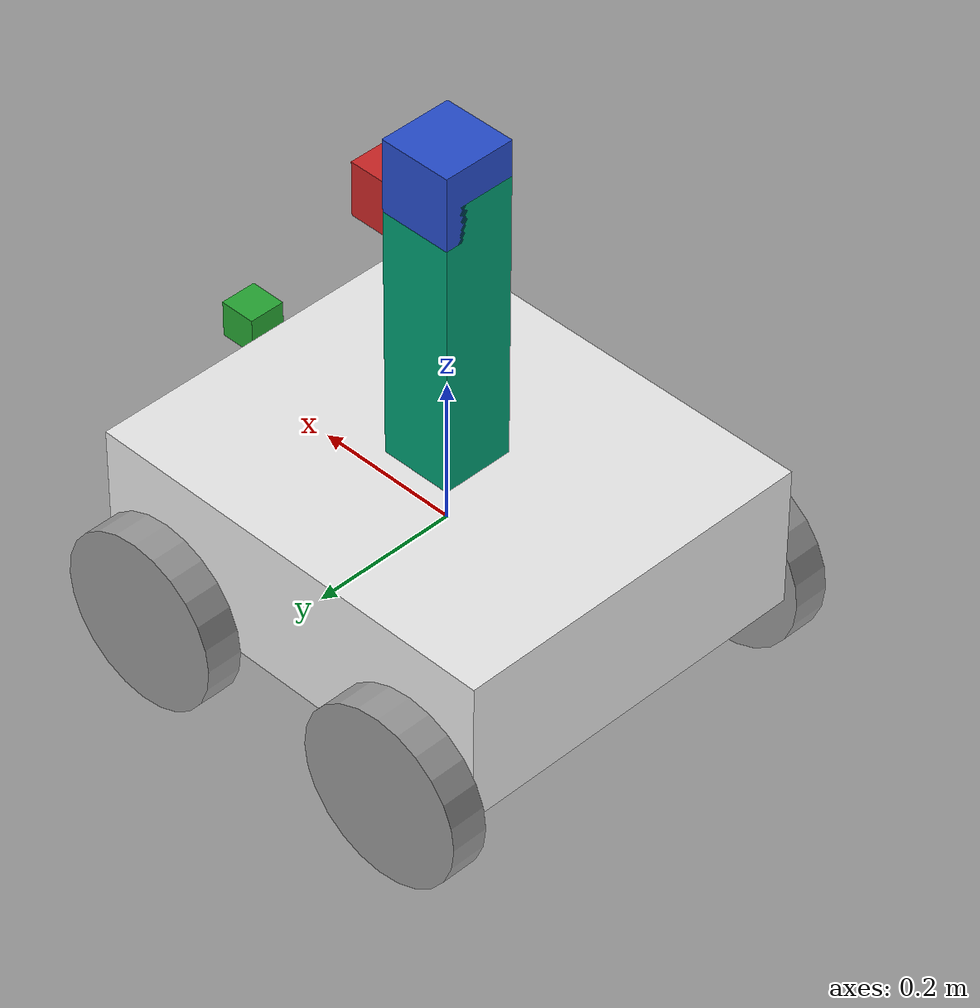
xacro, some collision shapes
<?xml version='1.0'?>

<robot name="robot" xmlns:xacro="http://www.ros.org/wiki/xacro">

  <xacro:include filename="$(find robot)/urdf/robot.gazebo" />

  <!-- COLOR REFERENCE -->

  <gazebo reference="fl_wheel">
    <material>Gazebo/Grey</material>
  </gazebo>

  <gazebo reference="fr_wheel">
    <material>Gazebo/Grey</material>
  </gazebo>

  <gazebo reference="bl_wheel">
    <material>Gazebo/Grey</material>
  </gazebo>

  <gazebo reference="br_wheel">
    <material>Gazebo/Grey</material>
  </gazebo>

  <gazebo reference="camera">
    <material>Gazebo/Green</material>
  </gazebo>

  <gazebo reference="gps_link">
    <material>Gazebo/Grey</material>
  </gazebo>

  <gazebo reference="imu_link">
    <material>Gazebo/Grey</material>
  </gazebo>

  <gazebo reference="chassis">
    <material>Gazebo/White</material>
  </gazebo>

  <gazebo reference="kinect_link">
    <material>Gazebo/Red</material>
  </gazebo>

  <gazebo reference="hokuyo">
    <material>Gazebo/Blue</material>
  </gazebo>

  <!-- LINKS -->

  <!-- ROBOT FOOTPRINT -->

  <link name="robot_footprint"></link>

  <joint name="robot_footprint_joint" type="fixed">
    <origin xyz="0 0 0" rpy="0 0 0" />
    <parent link="robot_footprint"/>
    <child link="chassis" />
  </joint>

  <!-- CHASSIS -->

  <link name='chassis'>

    <inertial>
      <mass value="10"/>
      <origin xyz="0.0 0 0" rpy=" 0 0 0"/>
      <inertia
          ixx="0.375" ixy="0" ixz="0"
          iyy="1.275" iyz="0"
          izz="1.5"
      />
    </inertial>

    <collision>
      <origin xyz="0 0 0" rpy=" 0 0 0"/>
      <geometry>
        <box size="0.6 0.51 0.2"/>
      </geometry>
    </collision>

    <visual>
      <origin xyz="0 0 0" rpy=" 0 0 0"/>
      <geometry>
       <box size="0.6 0.51 0.2"/>
      </geometry>
    </visual>

  </link>

  <!-- SUPPORT -->
  <link name='support'>

    <inertial>
      <mass value="1.0"/>
      <origin xyz="0.0 0 0" rpy=" 0 0 0"/>
      <inertia
          ixx="0.1" ixy="0" ixz="0"
          iyy="0.1" iyz="0"
          izz="0.1"
      />
    </inertial>

    <collision>
      <origin xyz="0 0 0" rpy=" 0 0 0"/>
      <geometry>
        <box size="0.1 0.1 0.4"/>
      </geometry>
    </collision>

    <visual>
      <origin xyz="0 0 0" rpy=" 0 0 0"/>
      <geometry>
       <box size="0.1 0.1 0.4"/>
      </geometry>
    </visual>

  </link>

  <!-- WHEELS -->

  <!-- FRONT RIGHT -->

  <link name="fr_wheel">
    <inertial>
      <mass value="1"/>
      <origin xyz="0 0 0" rpy="0 1.5707 1.5707"/>
      <inertia
        ixx="0.01583333333" ixy="0" ixz="0"
        iyy="0.0015625" iyz="0.0"
        izz="0.01583333333"
      />
    </inertial>

    <collision>
      <origin xyz="0 0 0" rpy="0 1.5707 1.5707"/>
      <geometry>
        <cylinder radius="0.12" length="0.05"/>
      </geometry>
    </collision>

    <visual>
      <origin xyz="0 0 0" rpy="0 1.5707 1.5707"/>
      <geometry>
        <cylinder radius="0.12" length="0.05"/>
      </geometry>
    </visual>

  </link>

  <!-- FRONT LEFT -->

  <link name="fl_wheel">
    <inertial>
      <mass value="1"/>
      <origin xyz="0 0 0" rpy="0 1.5707 1.5707"/>
      <inertia
        ixx="0.01583333333" ixy="0.0" ixz="0.0"
        iyy="0.0015625" iyz="0.0"
        izz="0.01583333333"
      />
    </inertial>

    <collision>
      <origin xyz="0 0 0" rpy="0 1.5707 1.5707"/>
      <geometry>
        <cylinder radius="0.12" length="0.05"/>
      </geometry>
    </collision>

    <visual>
      <origin xyz="0 0 0" rpy="0 1.5707 1.5707"/>
      <geometry>
        <cylinder radius="0.12" length="0.05"/>
      </geometry>
    </visual>

  </link>

  <!-- BACK RIGHT -->

  <link name="br_wheel">
    <inertial>
      <mass value="1"/>
      <origin xyz="0 0 0" rpy="0 1.5707 1.5707"/>
      <inertia
        ixx="0.01583333333" ixy="0.0" ixz="0.0"
        iyy="0.0015625" iyz="0.0"
        izz="0.01583333333"
      />
    </inertial>

    <collision>
      <origin xyz="0 0 0" rpy="0 1.5707 1.5707"/>
      <geometry>
        <cylinder radius="0.12" length="0.05"/>
      </geometry>
    </collision>

    <visual>
      <origin xyz="0 0 0" rpy="0 1.5707 1.5707"/>
      <geometry>
        <cylinder radius="0.12" length="0.05"/>
      </geometry>
    </visual>

  </link>

  <!-- BACK LEFT -->

  <link name="bl_wheel">
    <inertial>
      <mass value="1"/>
      <origin xyz="0 0 0" rpy="0 1.5707 1.5707"/>
      <inertia
        ixx="0.01583333333" ixy="0.0" ixz="0.0"
        iyy="0.0015625" iyz="0.0"
        izz="0.01583333333"
      />
    </inertial>

    <collision>
      <origin xyz="0 0 0" rpy="0 1.5707 1.5707"/>
      <geometry>
        <cylinder radius="0.12" length="0.05"/>
      </geometry>
    </collision>

    <visual>
      <origin xyz="0 0 0" rpy="0 1.5707 1.5707"/>
      <geometry>
        <cylinder radius="0.12" length="0.05"/>
      </geometry>
    </visual>

  </link>

  <!-- CAMERA -->

  <link name="camera">
    <inertial>
      <mass value="0.1"/>
      <origin xyz="0 0 0.075" rpy="0 0 0"/>
      <inertia
        ixx="1e-6" ixy="0.0" ixz="0.0"
        iyy="1e-6" iyz="0.0"
        izz="1e-6"
      />
    </inertial>

    <collision>
      <origin xyz="0 0 0.075" rpy="0 0 0"/>
      <geometry>
        <box size="0.05 0.05 0.05"/>
      </geometry>
    </collision>

    <visual>
      <origin xyz="0 0 0.005" rpy="0 0 0"/>
      <geometry>
        <box size="0.05 0.05 0.05"/>
      </geometry>
    </visual>

  </link>

  <!-- LIDAR -->

  <link name="hokuyo">
    <inertial>
      <mass value="1e-5"/>
      <origin xyz="0 0 0" rpy="0 0 0"/>
      <inertia
        ixx="1e-6" ixy="0.0" ixz="0.0"
        iyy="1e-6" iyz="0.0"
        izz="1e-6"
      />
    </inertial>

    <collision>
      <origin xyz="0 0 0." rpy="0 0 0"/>
      <geometry>
        <box size="0.1 0.1 0.1"/>
      </geometry>
    </collision>

    <visual>
      <origin xyz="0 0 0" rpy="0 0 0"/>
      <geometry>
        <mesh filename="package://robot/meshes/hokuyo.dae"/>
      </geometry>
    </visual>

  </link>

  <!-- KINECT -->

  <link name="kinect_link">
    <inertial>
      <mass value="1e-5"/>
      <origin xyz="0 0 0" rpy="0 0 0"/>
      <inertia
        ixx="1e-6" ixy="0.0" ixz="0.0"
        iyy="1e-6" iyz="0.0"
        izz="1e-6"
      />
    </inertial>

    <collision>
      <origin xyz="0 0 0." rpy="0 0 0"/>
      <geometry>
        <box size="0.075 0.075 0.075"/>
      </geometry>
    </collision>

    <visual>
      <origin xyz="0 0 0" rpy="0 0 0"/>
      <geometry>
        <box size="0.075 0.075 0.075"/>
      </geometry>
    </visual>

  </link>

  <link name="kinect_link_optical"></link>

  <!-- GPS -->

  <link name="gps_link">
    <collision>
      <origin xyz="0 0 0" rpy="0 0 0"/>
      <geometry>
        <cylinder radius="0.05" length="0.05"/>
      </geometry>
    </collision>

    <visual>
      <origin xyz="0 0 0" rpy="0 0 0"/>
      <geometry>
        <cylinder radius="0.05" length="0.05"/>
      </geometry>
    </visual>

    <inertial>
      <origin xyz="0 0 0" rpy="0 0 0"/>
      <mass value="0.1"/>
      <inertia
        ixx="8.33333333e-5" ixy="0.0" ixz="0.0"
        iyy="8.33333333e-5" iyz="0.0"
        izz="0.000125"/>
    </inertial>
  </link>

  <!-- IMU -->

  <link name="imu_link">
    <visual>
      <geometry>
        <box size="0.015 0.015 0.015"/>
      </geometry>
    </visual>
    <collision>
      <geometry>
        <box size="0.015 0.015 0.015"/>
      </geometry>
    </collision>
    <inertial>
      <mass value="0.1"/>
      <origin xyz="0 0 0" rpy="0 0 0"/>
      <inertia ixx="3.75e-6" ixy="0" ixz="0" iyy="3.75e-6" iyz="0" izz="3.75e-6" />
    </inertial>
  </link>

  <!-- ZED 2 -->

<!-- JOINTS -->

  <joint name="camera_joint" type="fixed">
    <origin xyz="0.325 0.0 0.1" rpy="0 0 0" />
    <parent link="chassis"/>
    <child link="camera" />
    <axis xyz="0 1 0"/>
  </joint>

  <joint name="support_joint" type="fixed">
    <origin xyz="0 0.0 0.3" rpy="0 0 0" />
    <parent link="chassis"/>
    <child link="support" />
    <axis xyz="0 1 0"/>
  </joint>

  <joint name="hokuyo_joint" type="fixed">
    <origin xyz="0 0.0 0.2" rpy="0 0 0" />
    <parent link="support"/>
    <child link="hokuyo" />
    <axis xyz="0 1 0"/>
  </joint>

  <joint name="kinect_joint" type="fixed">
    <origin xyz="0.075 0 0.14" rpy="0 0 0" />
    <parent link="support"/>
    <child link="kinect_link" />
    <axis xyz="0 1 0"/>
  </joint>

  <joint name="kinect_joint_optical" type="fixed">
    <origin xyz="0 0 0" rpy="-1.57 0 -1.57" />
    <parent link="kinect_link"/>
    <child link="kinect_link_optical" />
    <axis xyz="0 1 0"/>
  </joint>

  <joint type="continuous" name="fl_wheel_joint">
    <origin xyz="-0.2 0.28 -0.1" rpy="0 0 0" />
    <parent link="chassis"/>
    <child link="fl_wheel" />
    <axis xyz="0 1 0" rpy="0 0 0" />
    <limit effort="10000" velocity="1000" />
    <dynamics damping="1.0" friction="1.0" />
  </joint>

  <joint type="continuous" name="fr_wheel_joint">
    <origin xyz="-0.2 -0.28 -0.1" rpy="0 0 0" />
    <parent link="chassis"/>
    <child link="fr_wheel" />
    <axis xyz="0 1 0" rpy="0 0 0" />
    <limit effort="10000" velocity="1000" />
    <dynamics damping="1.0" friction="1.0" />
  </joint>

  <joint type="continuous" name="bl_wheel_joint">
    <origin xyz="0.2 0.28 -0.1" rpy="0 0 0" />
    <parent link="chassis"/>
    <child link="bl_wheel" />
    <axis xyz="0 1 0" rpy="0 0 0" />
    <limit effort="10000" velocity="1000" />
    <dynamics damping="1.0" friction="1.0" />
  </joint>

  <joint type="continuous" name="br_wheel_joint">
    <origin xyz="0.2 -0.28 -0.1" rpy="0 0 0" />
    <parent link="chassis"/>
    <child link="br_wheel" />2
    <axis xyz="0 1 0" rpy="0 0 0" />
    <limit effort="10000" velocity="1000" />
    <dynamics damping="1.0" friction="1.0" />
  </joint>

  <joint name="gps_joint" type="fixed">
    <origin xyz="0 0 0.05" rpy="0 0 0" />
    <parent link="chassis"/>
    <child link="gps_link" />
    <axis xyz="0 1 0"/>
  </joint>

  <joint name="imu" type="fixed">
    <origin xyz="0 0 0" rpy="0 0 0" />
    <parent link="chassis"/>
    <child link="imu_link" />
    <axis xyz="0 1 0"/>
  </joint>

</robot>
